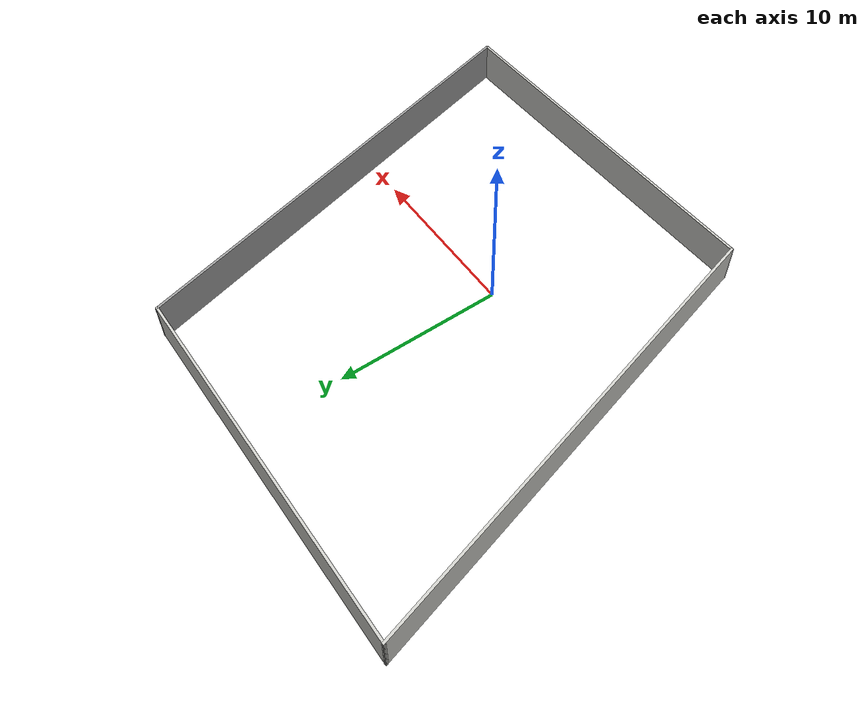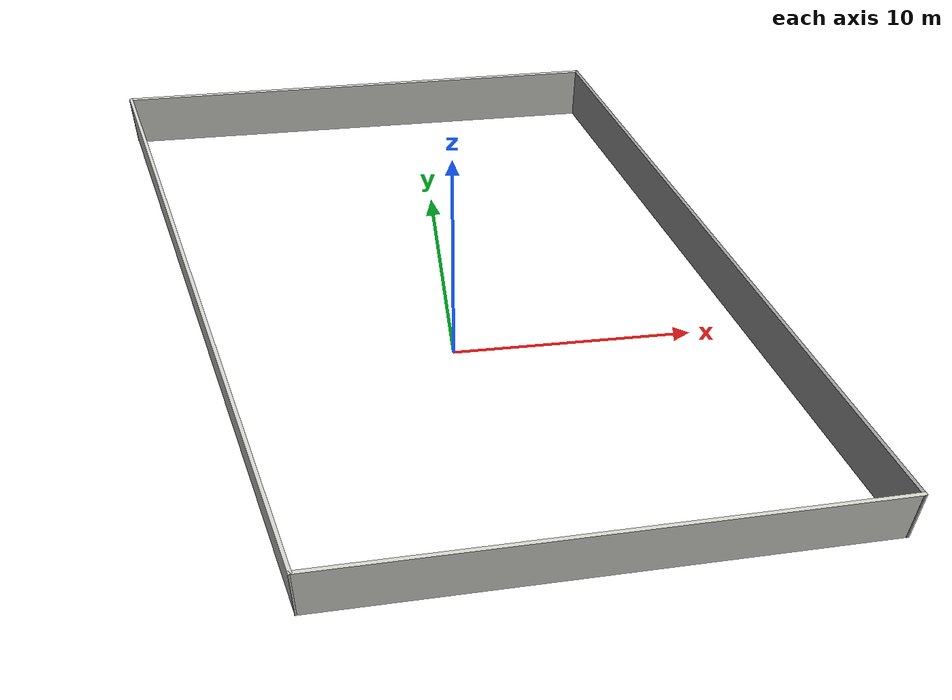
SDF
<?xml version='1.0'?>
<sdf version='1.7'>
  <model name='simpleBuilding'>
    <pose>0.579478 2.36803 0 0 -0 0</pose>
    <link name='Wall_11'>
      <collision name='Wall_11_Collision'>
        <geometry>
          <box>
            <size>29 0.15 2.5</size>
          </box>
        </geometry>
        <pose>0 0 1.25 0 -0 0</pose>
      </collision>
      <visual name='Wall_11_Visual'>
        <pose>0 0 1.25 0 -0 0</pose>
        <geometry>
          <box>
            <size>29 0.15 2.5</size>
          </box>
        </geometry>
        <material>
          <script>
            <uri>file://media/materials/scripts/gazebo.material</uri>
            <name>Gazebo/CeilingTiled</name>
          </script>
          <ambient>1 1 1 1</ambient>
        </material>
        <meta>
          <layer>0</layer>
        </meta>
      </visual>
      <pose>-10.9529 -0 0 0 -0 1.8326</pose>
    </link>
    <link name='Wall_12'>
      <collision name='Wall_12_Collision'>
        <geometry>
          <box>
            <size>22.25 0.15 2.5</size>
          </box>
        </geometry>
        <pose>0 0 1.25 0 -0 0</pose>
      </collision>
      <visual name='Wall_12_Visual'>
        <pose>0 0 1.25 0 -0 0</pose>
        <geometry>
          <box>
            <size>22.25 0.15 2.5</size>
          </box>
        </geometry>
        <material>
          <script>
            <uri>file://media/materials/scripts/gazebo.material</uri>
            <name>Gazebo/CeilingTiled</name>
          </script>
          <ambient>1 1 1 1</ambient>
        </material>
        <meta>
          <layer>0</layer>
        </meta>
      </visual>
      <pose>-3.63641 13.9335 0 0 -0 0</pose>
    </link>
    <link name='Wall_13'>
      <collision name='Wall_13_Collision'>
        <geometry>
          <box>
            <size>28.25 0.15 2.5</size>
          </box>
        </geometry>
        <pose>0 0 1.25 0 -0 0</pose>
      </collision>
      <visual name='Wall_13_Visual'>
        <pose>0 0 1.25 0 -0 0</pose>
        <geometry>
          <box>
            <size>28.25 0.15 2.5</size>
          </box>
        </geometry>
        <material>
          <script>
            <uri>file://media/materials/scripts/gazebo.material</uri>
            <name>Gazebo/Grey</name>
          </script>
          <ambient>1 1 1 1</ambient>
        </material>
        <meta>
          <layer>0</layer>
        </meta>
      </visual>
      <pose>11.05 0.362222 0 0 -0 -1.309</pose>
    </link>
    <link name='Wall_14'>
      <collision name='Wall_14_Collision'>
        <geometry>
          <box>
            <size>22.0679 0.15 2.5</size>
          </box>
        </geometry>
        <pose>0 0 1.25 0 -0 0</pose>
      </collision>
      <visual name='Wall_14_Visual'>
        <pose>0 0 1.25 0 -0 0</pose>
        <geometry>
          <box>
            <size>22.0679 0.15 2.5</size>
          </box>
        </geometry>
        <material>
          <script>
            <uri>file://media/materials/scripts/gazebo.material</uri>
            <name>Gazebo/CeilingTiled</name>
          </script>
          <ambient>1 1 1 1</ambient>
        </material>
        <meta>
          <layer>0</layer>
        </meta>
      </visual>
      <pose>3.73346 -13.5713 0 0 -0 -3.10853</pose>
    </link>
    <static>1</static>
  </model>
</sdf>
